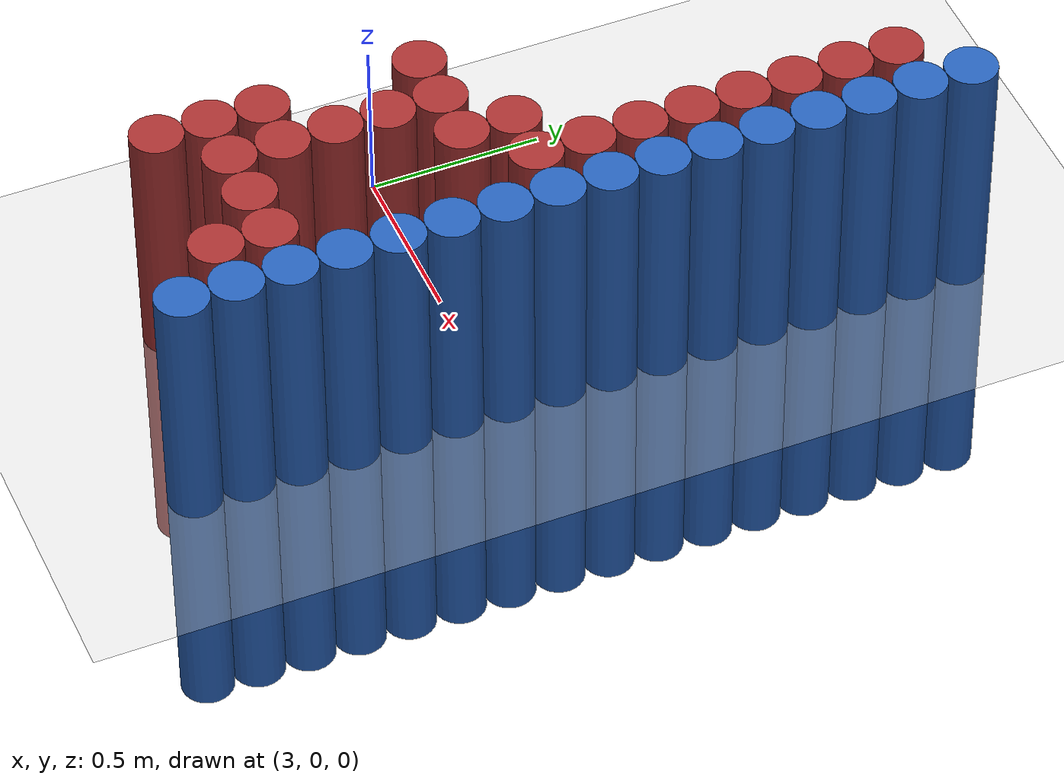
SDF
<sdf version="1.6">
 <world name="default">
  <model name="ground_plane">
   <static>1</static>
   <link name="link">
    <collision name="collision">
     <geometry><plane><normal>0 0 1</normal><size>100 100</size></plane></geometry>
     <surface><friction><ode><mu>100</mu><mu2>50</mu2></ode></friction></surface>
    </collision>
    <visual name="visual">
     <cast_shadows>0</cast_shadows>
     <geometry><plane><normal>0 0 1</normal><size>100 100</size></plane></geometry>
     <material>
      <script><uri>file://media/materials/scripts/gazebo.material</uri><name>Gazebo/Grey</name></script>
     </material>
    </visual>
   </link>
  </model>
  <model name="unit_cylinder_102">
   <static>1</static>
   <pose>3.925000 -0.875000 0.000000 0.000000 0.000000 0.000000</pose>
   <link name="link">
    <inertial>
     <mass>1</mass>
     <inertia><ixx>0.145833</ixx><ixy>0</ixy><ixz>0</ixz><iyy>0.145833</iyy><iyz>0</iyz><izz>0.125</izz></inertia>
    </inertial>
    <collision name="collision">
     <geometry><cylinder><radius>0.075000</radius><length>1.5</length></cylinder></geometry>
    </collision>
    <visual name="visual">
     <geometry><cylinder><radius>0.075000</radius><length>1.5</length></cylinder></geometry>
     <material>
      <ambient>0.152000 0.379000 0.720000 1</ambient>
      <diffuse>0.152000 0.379000 0.720000 1</diffuse>
     </material>
     <material>
      <script><name>Gazebo/Grey</name><uri>file://media/materials/scripts/gazebo.material</uri></script>
     </material>
    </visual>
   </link>
  </model>
  <model name="unit_cylinder_104">
   <static>1</static>
   <pose>3.925000 -0.725000 0.000000 0.000000 0.000000 0.000000</pose>
   <link name="link">
    <inertial>
     <mass>1</mass>
     <inertia><ixx>0.145833</ixx><ixy>0</ixy><ixz>0</ixz><iyy>0.145833</iyy><iyz>0</iyz><izz>0.125</izz></inertia>
    </inertial>
    <collision name="collision">
     <geometry><cylinder><radius>0.075000</radius><length>1.5</length></cylinder></geometry>
    </collision>
    <visual name="visual">
     <geometry><cylinder><radius>0.075000</radius><length>1.5</length></cylinder></geometry>
     <material>
      <ambient>0.152000 0.379000 0.720000 1</ambient>
      <diffuse>0.152000 0.379000 0.720000 1</diffuse>
     </material>
     <material>
      <script><name>Gazebo/Grey</name><uri>file://media/materials/scripts/gazebo.material</uri></script>
     </material>
    </visual>
   </link>
  </model>
  <model name="unit_cylinder_106">
   <static>1</static>
   <pose>3.925000 -0.575000 0.000000 0.000000 0.000000 0.000000</pose>
   <link name="link">
    <inertial>
     <mass>1</mass>
     <inertia><ixx>0.145833</ixx><ixy>0</ixy><ixz>0</ixz><iyy>0.145833</iyy><iyz>0</iyz><izz>0.125</izz></inertia>
    </inertial>
    <collision name="collision">
     <geometry><cylinder><radius>0.075000</radius><length>1.5</length></cylinder></geometry>
    </collision>
    <visual name="visual">
     <geometry><cylinder><radius>0.075000</radius><length>1.5</length></cylinder></geometry>
     <material>
      <ambient>0.152000 0.379000 0.720000 1</ambient>
      <diffuse>0.152000 0.379000 0.720000 1</diffuse>
     </material>
     <material>
      <script><name>Gazebo/Grey</name><uri>file://media/materials/scripts/gazebo.material</uri></script>
     </material>
    </visual>
   </link>
  </model>
  <model name="unit_cylinder_108">
   <static>1</static>
   <pose>3.925000 -0.425000 0.000000 0.000000 0.000000 0.000000</pose>
   <link name="link">
    <inertial>
     <mass>1</mass>
     <inertia><ixx>0.145833</ixx><ixy>0</ixy><ixz>0</ixz><iyy>0.145833</iyy><iyz>0</iyz><izz>0.125</izz></inertia>
    </inertial>
    <collision name="collision">
     <geometry><cylinder><radius>0.075000</radius><length>1.5</length></cylinder></geometry>
    </collision>
    <visual name="visual">
     <geometry><cylinder><radius>0.075000</radius><length>1.5</length></cylinder></geometry>
     <material>
      <ambient>0.152000 0.379000 0.720000 1</ambient>
      <diffuse>0.152000 0.379000 0.720000 1</diffuse>
     </material>
     <material>
      <script><name>Gazebo/Grey</name><uri>file://media/materials/scripts/gazebo.material</uri></script>
     </material>
    </visual>
   </link>
  </model>
  <model name="unit_cylinder_110">
   <static>1</static>
   <pose>3.925000 -0.275000 0.000000 0.000000 0.000000 0.000000</pose>
   <link name="link">
    <inertial>
     <mass>1</mass>
     <inertia><ixx>0.145833</ixx><ixy>0</ixy><ixz>0</ixz><iyy>0.145833</iyy><iyz>0</iyz><izz>0.125</izz></inertia>
    </inertial>
    <collision name="collision">
     <geometry><cylinder><radius>0.075000</radius><length>1.5</length></cylinder></geometry>
    </collision>
    <visual name="visual">
     <geometry><cylinder><radius>0.075000</radius><length>1.5</length></cylinder></geometry>
     <material>
      <ambient>0.152000 0.379000 0.720000 1</ambient>
      <diffuse>0.152000 0.379000 0.720000 1</diffuse>
     </material>
     <material>
      <script><name>Gazebo/Grey</name><uri>file://media/materials/scripts/gazebo.material</uri></script>
     </material>
    </visual>
   </link>
  </model>
  <model name="unit_cylinder_112">
   <static>1</static>
   <pose>3.925000 -0.125000 0.000000 0.000000 0.000000 0.000000</pose>
   <link name="link">
    <inertial>
     <mass>1</mass>
     <inertia><ixx>0.145833</ixx><ixy>0</ixy><ixz>0</ixz><iyy>0.145833</iyy><iyz>0</iyz><izz>0.125</izz></inertia>
    </inertial>
    <collision name="collision">
     <geometry><cylinder><radius>0.075000</radius><length>1.5</length></cylinder></geometry>
    </collision>
    <visual name="visual">
     <geometry><cylinder><radius>0.075000</radius><length>1.5</length></cylinder></geometry>
     <material>
      <ambient>0.152000 0.379000 0.720000 1</ambient>
      <diffuse>0.152000 0.379000 0.720000 1</diffuse>
     </material>
     <material>
      <script><name>Gazebo/Grey</name><uri>file://media/materials/scripts/gazebo.material</uri></script>
     </material>
    </visual>
   </link>
  </model>
  <model name="unit_cylinder_114">
   <static>1</static>
   <pose>3.925000 0.025000 0.000000 0.000000 0.000000 0.000000</pose>
   <link name="link">
    <inertial>
     <mass>1</mass>
     <inertia><ixx>0.145833</ixx><ixy>0</ixy><ixz>0</ixz><iyy>0.145833</iyy><iyz>0</iyz><izz>0.125</izz></inertia>
    </inertial>
    <collision name="collision">
     <geometry><cylinder><radius>0.075000</radius><length>1.5</length></cylinder></geometry>
    </collision>
    <visual name="visual">
     <geometry><cylinder><radius>0.075000</radius><length>1.5</length></cylinder></geometry>
     <material>
      <ambient>0.152000 0.379000 0.720000 1</ambient>
      <diffuse>0.152000 0.379000 0.720000 1</diffuse>
     </material>
     <material>
      <script><name>Gazebo/Grey</name><uri>file://media/materials/scripts/gazebo.material</uri></script>
     </material>
    </visual>
   </link>
  </model>
  <model name="unit_cylinder_116">
   <static>1</static>
   <pose>3.925000 0.175000 0.000000 0.000000 0.000000 0.000000</pose>
   <link name="link">
    <inertial>
     <mass>1</mass>
     <inertia><ixx>0.145833</ixx><ixy>0</ixy><ixz>0</ixz><iyy>0.145833</iyy><iyz>0</iyz><izz>0.125</izz></inertia>
    </inertial>
    <collision name="collision">
     <geometry><cylinder><radius>0.075000</radius><length>1.5</length></cylinder></geometry>
    </collision>
    <visual name="visual">
     <geometry><cylinder><radius>0.075000</radius><length>1.5</length></cylinder></geometry>
     <material>
      <ambient>0.152000 0.379000 0.720000 1</ambient>
      <diffuse>0.152000 0.379000 0.720000 1</diffuse>
     </material>
     <material>
      <script><name>Gazebo/Grey</name><uri>file://media/materials/scripts/gazebo.material</uri></script>
     </material>
    </visual>
   </link>
  </model>
  <model name="unit_cylinder_118">
   <static>1</static>
   <pose>3.925000 0.325000 0.000000 0.000000 0.000000 0.000000</pose>
   <link name="link">
    <inertial>
     <mass>1</mass>
     <inertia><ixx>0.145833</ixx><ixy>0</ixy><ixz>0</ixz><iyy>0.145833</iyy><iyz>0</iyz><izz>0.125</izz></inertia>
    </inertial>
    <collision name="collision">
     <geometry><cylinder><radius>0.075000</radius><length>1.5</length></cylinder></geometry>
    </collision>
    <visual name="visual">
     <geometry><cylinder><radius>0.075000</radius><length>1.5</length></cylinder></geometry>
     <material>
      <ambient>0.152000 0.379000 0.720000 1</ambient>
      <diffuse>0.152000 0.379000 0.720000 1</diffuse>
     </material>
     <material>
      <script><name>Gazebo/Grey</name><uri>file://media/materials/scripts/gazebo.material</uri></script>
     </material>
    </visual>
   </link>
  </model>
  <model name="unit_cylinder_120">
   <static>1</static>
   <pose>3.925000 0.475000 0.000000 0.000000 0.000000 0.000000</pose>
   <link name="link">
    <inertial>
     <mass>1</mass>
     <inertia><ixx>0.145833</ixx><ixy>0</ixy><ixz>0</ixz><iyy>0.145833</iyy><iyz>0</iyz><izz>0.125</izz></inertia>
    </inertial>
    <collision name="collision">
     <geometry><cylinder><radius>0.075000</radius><length>1.5</length></cylinder></geometry>
    </collision>
    <visual name="visual">
     <geometry><cylinder><radius>0.075000</radius><length>1.5</length></cylinder></geometry>
     <material>
      <ambient>0.152000 0.379000 0.720000 1</ambient>
      <diffuse>0.152000 0.379000 0.720000 1</diffuse>
     </material>
     <material>
      <script><name>Gazebo/Grey</name><uri>file://media/materials/scripts/gazebo.material</uri></script>
     </material>
    </visual>
   </link>
  </model>
  <model name="unit_cylinder_122">
   <static>1</static>
   <pose>3.925000 0.625000 0.000000 0.000000 0.000000 0.000000</pose>
   <link name="link">
    <inertial>
     <mass>1</mass>
     <inertia><ixx>0.145833</ixx><ixy>0</ixy><ixz>0</ixz><iyy>0.145833</iyy><iyz>0</iyz><izz>0.125</izz></inertia>
    </inertial>
    <collision name="collision">
     <geometry><cylinder><radius>0.075000</radius><length>1.5</length></cylinder></geometry>
    </collision>
    <visual name="visual">
     <geometry><cylinder><radius>0.075000</radius><length>1.5</length></cylinder></geometry>
     <material>
      <ambient>0.152000 0.379000 0.720000 1</ambient>
      <diffuse>0.152000 0.379000 0.720000 1</diffuse>
     </material>
     <material>
      <script><name>Gazebo/Grey</name><uri>file://media/materials/scripts/gazebo.material</uri></script>
     </material>
    </visual>
   </link>
  </model>
  <model name="unit_cylinder_124">
   <static>1</static>
   <pose>3.925000 0.775000 0.000000 0.000000 0.000000 0.000000</pose>
   <link name="link">
    <inertial>
     <mass>1</mass>
     <inertia><ixx>0.145833</ixx><ixy>0</ixy><ixz>0</ixz><iyy>0.145833</iyy><iyz>0</iyz><izz>0.125</izz></inertia>
    </inertial>
    <collision name="collision">
     <geometry><cylinder><radius>0.075000</radius><length>1.5</length></cylinder></geometry>
    </collision>
    <visual name="visual">
     <geometry><cylinder><radius>0.075000</radius><length>1.5</length></cylinder></geometry>
     <material>
      <ambient>0.152000 0.379000 0.720000 1</ambient>
      <diffuse>0.152000 0.379000 0.720000 1</diffuse>
     </material>
     <material>
      <script><name>Gazebo/Grey</name><uri>file://media/materials/scripts/gazebo.material</uri></script>
     </material>
    </visual>
   </link>
  </model>
  <model name="unit_cylinder_126">
   <static>1</static>
   <pose>3.925000 0.925000 0.000000 0.000000 0.000000 0.000000</pose>
   <link name="link">
    <inertial>
     <mass>1</mass>
     <inertia><ixx>0.145833</ixx><ixy>0</ixy><ixz>0</ixz><iyy>0.145833</iyy><iyz>0</iyz><izz>0.125</izz></inertia>
    </inertial>
    <collision name="collision">
     <geometry><cylinder><radius>0.075000</radius><length>1.5</length></cylinder></geometry>
    </collision>
    <visual name="visual">
     <geometry><cylinder><radius>0.075000</radius><length>1.5</length></cylinder></geometry>
     <material>
      <ambient>0.152000 0.379000 0.720000 1</ambient>
      <diffuse>0.152000 0.379000 0.720000 1</diffuse>
     </material>
     <material>
      <script><name>Gazebo/Grey</name><uri>file://media/materials/scripts/gazebo.material</uri></script>
     </material>
    </visual>
   </link>
  </model>
  <model name="unit_cylinder_128">
   <static>1</static>
   <pose>3.925000 1.075000 0.000000 0.000000 0.000000 0.000000</pose>
   <link name="link">
    <inertial>
     <mass>1</mass>
     <inertia><ixx>0.145833</ixx><ixy>0</ixy><ixz>0</ixz><iyy>0.145833</iyy><iyz>0</iyz><izz>0.125</izz></inertia>
    </inertial>
    <collision name="collision">
     <geometry><cylinder><radius>0.075000</radius><length>1.5</length></cylinder></geometry>
    </collision>
    <visual name="visual">
     <geometry><cylinder><radius>0.075000</radius><length>1.5</length></cylinder></geometry>
     <material>
      <ambient>0.152000 0.379000 0.720000 1</ambient>
      <diffuse>0.152000 0.379000 0.720000 1</diffuse>
     </material>
     <material>
      <script><name>Gazebo/Grey</name><uri>file://media/materials/scripts/gazebo.material</uri></script>
     </material>
    </visual>
   </link>
  </model>
  <model name="unit_cylinder_130">
   <static>1</static>
   <pose>3.925000 1.225000 0.000000 0.000000 0.000000 0.000000</pose>
   <link name="link">
    <inertial>
     <mass>1</mass>
     <inertia><ixx>0.145833</ixx><ixy>0</ixy><ixz>0</ixz><iyy>0.145833</iyy><iyz>0</iyz><izz>0.125</izz></inertia>
    </inertial>
    <collision name="collision">
     <geometry><cylinder><radius>0.075000</radius><length>1.5</length></cylinder></geometry>
    </collision>
    <visual name="visual">
     <geometry><cylinder><radius>0.075000</radius><length>1.5</length></cylinder></geometry>
     <material>
      <ambient>0.152000 0.379000 0.720000 1</ambient>
      <diffuse>0.152000 0.379000 0.720000 1</diffuse>
     </material>
     <material>
      <script><name>Gazebo/Grey</name><uri>file://media/materials/scripts/gazebo.material</uri></script>
     </material>
    </visual>
   </link>
  </model>
  <model name="unit_cylinder_132">
   <static>1</static>
   <pose>3.925000 1.375000 0.000000 0.000000 0.000000 0.000000</pose>
   <link name="link">
    <inertial>
     <mass>1</mass>
     <inertia><ixx>0.145833</ixx><ixy>0</ixy><ixz>0</ixz><iyy>0.145833</iyy><iyz>0</iyz><izz>0.125</izz></inertia>
    </inertial>
    <collision name="collision">
     <geometry><cylinder><radius>0.075000</radius><length>1.5</length></cylinder></geometry>
    </collision>
    <visual name="visual">
     <geometry><cylinder><radius>0.075000</radius><length>1.5</length></cylinder></geometry>
     <material>
      <ambient>0.152000 0.379000 0.720000 1</ambient>
      <diffuse>0.152000 0.379000 0.720000 1</diffuse>
     </material>
     <material>
      <script><name>Gazebo/Grey</name><uri>file://media/materials/scripts/gazebo.material</uri></script>
     </material>
    </visual>
   </link>
  </model>
  <model name="unit_cylinder_620">
   <static>1</static>
   <pose>3.325000 -0.725000 0.000000 0.000000 0.000000 0.000000</pose>
   <link name="link">
    <inertial>
     <mass>1</mass>
     <inertia><ixx>0.145833</ixx><ixy>0</ixy><ixz>0</ixz><iyy>0.145833</iyy><iyz>0</iyz><izz>0.125</izz></inertia>
    </inertial>
    <collision name="collision">
     <geometry><cylinder><radius>0.075000</radius><length>1.5</length></cylinder></geometry>
    </collision>
    <visual name="visual">
     <geometry><cylinder><radius>0.075000</radius><length>1.5</length></cylinder></geometry>
     <material>
      <ambient>0.648000 0.192000 0.192000 1</ambient>
      <diffuse>0.648000 0.192000 0.192000 1</diffuse>
     </material>
     <material>
      <script><name>Gazebo/Grey</name><uri>file://media/materials/scripts/gazebo.material</uri></script>
     </material>
    </visual>
   </link>
  </model>
  <model name="unit_cylinder_621">
   <static>1</static>
   <pose>3.325000 -0.575000 0.000000 0.000000 0.000000 0.000000</pose>
   <link name="link">
    <inertial>
     <mass>1</mass>
     <inertia><ixx>0.145833</ixx><ixy>0</ixy><ixz>0</ixz><iyy>0.145833</iyy><iyz>0</iyz><izz>0.125</izz></inertia>
    </inertial>
    <collision name="collision">
     <geometry><cylinder><radius>0.075000</radius><length>1.5</length></cylinder></geometry>
    </collision>
    <visual name="visual">
     <geometry><cylinder><radius>0.075000</radius><length>1.5</length></cylinder></geometry>
     <material>
      <ambient>0.648000 0.192000 0.192000 1</ambient>
      <diffuse>0.648000 0.192000 0.192000 1</diffuse>
     </material>
     <material>
      <script><name>Gazebo/Grey</name><uri>file://media/materials/scripts/gazebo.material</uri></script>
     </material>
    </visual>
   </link>
  </model>
  <model name="unit_cylinder_622">
   <static>1</static>
   <pose>3.325000 -0.425000 0.000000 0.000000 0.000000 0.000000</pose>
   <link name="link">
    <inertial>
     <mass>1</mass>
     <inertia><ixx>0.145833</ixx><ixy>0</ixy><ixz>0</ixz><iyy>0.145833</iyy><iyz>0</iyz><izz>0.125</izz></inertia>
    </inertial>
    <collision name="collision">
     <geometry><cylinder><radius>0.075000</radius><length>1.5</length></cylinder></geometry>
    </collision>
    <visual name="visual">
     <geometry><cylinder><radius>0.075000</radius><length>1.5</length></cylinder></geometry>
     <material>
      <ambient>0.648000 0.192000 0.192000 1</ambient>
      <diffuse>0.648000 0.192000 0.192000 1</diffuse>
     </material>
     <material>
      <script><name>Gazebo/Grey</name><uri>file://media/materials/scripts/gazebo.material</uri></script>
     </material>
    </visual>
   </link>
  </model>
  <model name="unit_cylinder_623">
   <static>1</static>
   <pose>3.325000 0.025000 0.000000 0.000000 0.000000 0.000000</pose>
   <link name="link">
    <inertial>
     <mass>1</mass>
     <inertia><ixx>0.145833</ixx><ixy>0</ixy><ixz>0</ixz><iyy>0.145833</iyy><iyz>0</iyz><izz>0.125</izz></inertia>
    </inertial>
    <collision name="collision">
     <geometry><cylinder><radius>0.075000</radius><length>1.5</length></cylinder></geometry>
    </collision>
    <visual name="visual">
     <geometry><cylinder><radius>0.075000</radius><length>1.5</length></cylinder></geometry>
     <material>
      <ambient>0.648000 0.192000 0.192000 1</ambient>
      <diffuse>0.648000 0.192000 0.192000 1</diffuse>
     </material>
     <material>
      <script><name>Gazebo/Grey</name><uri>file://media/materials/scripts/gazebo.material</uri></script>
     </material>
    </visual>
   </link>
  </model>
  <model name="unit_cylinder_631">
   <static>1</static>
   <pose>3.475000 -0.575000 0.000000 0.000000 0.000000 0.000000</pose>
   <link name="link">
    <inertial>
     <mass>1</mass>
     <inertia><ixx>0.145833</ixx><ixy>0</ixy><ixz>0</ixz><iyy>0.145833</iyy><iyz>0</iyz><izz>0.125</izz></inertia>
    </inertial>
    <collision name="collision">
     <geometry><cylinder><radius>0.075000</radius><length>1.5</length></cylinder></geometry>
    </collision>
    <visual name="visual">
     <geometry><cylinder><radius>0.075000</radius><length>1.5</length></cylinder></geometry>
     <material>
      <ambient>0.648000 0.192000 0.192000 1</ambient>
      <diffuse>0.648000 0.192000 0.192000 1</diffuse>
     </material>
     <material>
      <script><name>Gazebo/Grey</name><uri>file://media/materials/scripts/gazebo.material</uri></script>
     </material>
    </visual>
   </link>
  </model>
  <model name="unit_cylinder_632">
   <static>1</static>
   <pose>3.475000 -0.425000 0.000000 0.000000 0.000000 0.000000</pose>
   <link name="link">
    <inertial>
     <mass>1</mass>
     <inertia><ixx>0.145833</ixx><ixy>0</ixy><ixz>0</ixz><iyy>0.145833</iyy><iyz>0</iyz><izz>0.125</izz></inertia>
    </inertial>
    <collision name="collision">
     <geometry><cylinder><radius>0.075000</radius><length>1.5</length></cylinder></geometry>
    </collision>
    <visual name="visual">
     <geometry><cylinder><radius>0.075000</radius><length>1.5</length></cylinder></geometry>
     <material>
      <ambient>0.648000 0.192000 0.192000 1</ambient>
      <diffuse>0.648000 0.192000 0.192000 1</diffuse>
     </material>
     <material>
      <script><name>Gazebo/Grey</name><uri>file://media/materials/scripts/gazebo.material</uri></script>
     </material>
    </visual>
   </link>
  </model>
  <model name="unit_cylinder_633">
   <static>1</static>
   <pose>3.475000 -0.275000 0.000000 0.000000 0.000000 0.000000</pose>
   <link name="link">
    <inertial>
     <mass>1</mass>
     <inertia><ixx>0.145833</ixx><ixy>0</ixy><ixz>0</ixz><iyy>0.145833</iyy><iyz>0</iyz><izz>0.125</izz></inertia>
    </inertial>
    <collision name="collision">
     <geometry><cylinder><radius>0.075000</radius><length>1.5</length></cylinder></geometry>
    </collision>
    <visual name="visual">
     <geometry><cylinder><radius>0.075000</radius><length>1.5</length></cylinder></geometry>
     <material>
      <ambient>0.648000 0.192000 0.192000 1</ambient>
      <diffuse>0.648000 0.192000 0.192000 1</diffuse>
     </material>
     <material>
      <script><name>Gazebo/Grey</name><uri>file://media/materials/scripts/gazebo.material</uri></script>
     </material>
    </visual>
   </link>
  </model>
  <model name="unit_cylinder_634">
   <static>1</static>
   <pose>3.475000 -0.125000 0.000000 0.000000 0.000000 0.000000</pose>
   <link name="link">
    <inertial>
     <mass>1</mass>
     <inertia><ixx>0.145833</ixx><ixy>0</ixy><ixz>0</ixz><iyy>0.145833</iyy><iyz>0</iyz><izz>0.125</izz></inertia>
    </inertial>
    <collision name="collision">
     <geometry><cylinder><radius>0.075000</radius><length>1.5</length></cylinder></geometry>
    </collision>
    <visual name="visual">
     <geometry><cylinder><radius>0.075000</radius><length>1.5</length></cylinder></geometry>
     <material>
      <ambient>0.648000 0.192000 0.192000 1</ambient>
      <diffuse>0.648000 0.192000 0.192000 1</diffuse>
     </material>
     <material>
      <script><name>Gazebo/Grey</name><uri>file://media/materials/scripts/gazebo.material</uri></script>
     </material>
    </visual>
   </link>
  </model>
  <model name="unit_cylinder_635">
   <static>1</static>
   <pose>3.475000 0.025000 0.000000 0.000000 0.000000 0.000000</pose>
   <link name="link">
    <inertial>
     <mass>1</mass>
     <inertia><ixx>0.145833</ixx><ixy>0</ixy><ixz>0</ixz><iyy>0.145833</iyy><iyz>0</iyz><izz>0.125</izz></inertia>
    </inertial>
    <collision name="collision">
     <geometry><cylinder><radius>0.075000</radius><length>1.5</length></cylinder></geometry>
    </collision>
    <visual name="visual">
     <geometry><cylinder><radius>0.075000</radius><length>1.5</length></cylinder></geometry>
     <material>
      <ambient>0.648000 0.192000 0.192000 1</ambient>
      <diffuse>0.648000 0.192000 0.192000 1</diffuse>
     </material>
     <material>
      <script><name>Gazebo/Grey</name><uri>file://media/materials/scripts/gazebo.material</uri></script>
     </material>
    </visual>
   </link>
  </model>
  <model name="unit_cylinder_639">
   <static>1</static>
   <pose>3.625000 -0.575000 0.000000 0.000000 0.000000 0.000000</pose>
   <link name="link">
    <inertial>
     <mass>1</mass>
     <inertia><ixx>0.145833</ixx><ixy>0</ixy><ixz>0</ixz><iyy>0.145833</iyy><iyz>0</iyz><izz>0.125</izz></inertia>
    </inertial>
    <collision name="collision">
     <geometry><cylinder><radius>0.075000</radius><length>1.5</length></cylinder></geometry>
    </collision>
    <visual name="visual">
     <geometry><cylinder><radius>0.075000</radius><length>1.5</length></cylinder></geometry>
     <material>
      <ambient>0.648000 0.192000 0.192000 1</ambient>
      <diffuse>0.648000 0.192000 0.192000 1</diffuse>
     </material>
     <material>
      <script><name>Gazebo/Grey</name><uri>file://media/materials/scripts/gazebo.material</uri></script>
     </material>
    </visual>
   </link>
  </model>
  <model name="unit_cylinder_640">
   <static>1</static>
   <pose>3.625000 0.025000 0.000000 0.000000 0.000000 0.000000</pose>
   <link name="link">
    <inertial>
     <mass>1</mass>
     <inertia><ixx>0.145833</ixx><ixy>0</ixy><ixz>0</ixz><iyy>0.145833</iyy><iyz>0</iyz><izz>0.125</izz></inertia>
    </inertial>
    <collision name="collision">
     <geometry><cylinder><radius>0.075000</radius><length>1.5</length></cylinder></geometry>
    </collision>
    <visual name="visual">
     <geometry><cylinder><radius>0.075000</radius><length>1.5</length></cylinder></geometry>
     <material>
      <ambient>0.648000 0.192000 0.192000 1</ambient>
      <diffuse>0.648000 0.192000 0.192000 1</diffuse>
     </material>
     <material>
      <script><name>Gazebo/Grey</name><uri>file://media/materials/scripts/gazebo.material</uri></script>
     </material>
    </visual>
   </link>
  </model>
  <model name="unit_cylinder_641">
   <static>1</static>
   <pose>3.625000 0.175000 0.000000 0.000000 0.000000 0.000000</pose>
   <link name="link">
    <inertial>
     <mass>1</mass>
     <inertia><ixx>0.145833</ixx><ixy>0</ixy><ixz>0</ixz><iyy>0.145833</iyy><iyz>0</iyz><izz>0.125</izz></inertia>
    </inertial>
    <collision name="collision">
     <geometry><cylinder><radius>0.075000</radius><length>1.5</length></cylinder></geometry>
    </collision>
    <visual name="visual">
     <geometry><cylinder><radius>0.075000</radius><length>1.5</length></cylinder></geometry>
     <material>
      <ambient>0.648000 0.192000 0.192000 1</ambient>
      <diffuse>0.648000 0.192000 0.192000 1</diffuse>
     </material>
     <material>
      <script><name>Gazebo/Grey</name><uri>file://media/materials/scripts/gazebo.material</uri></script>
     </material>
    </visual>
   </link>
  </model>
  <model name="unit_cylinder_655">
   <static>1</static>
   <pose>3.775000 -0.725000 0.000000 0.000000 0.000000 0.000000</pose>
   <link name="link">
    <inertial>
     <mass>1</mass>
     <inertia><ixx>0.145833</ixx><ixy>0</ixy><ixz>0</ixz><iyy>0.145833</iyy><iyz>0</iyz><izz>0.125</izz></inertia>
    </inertial>
    <collision name="collision">
     <geometry><cylinder><radius>0.075000</radius><length>1.5</length></cylinder></geometry>
    </collision>
    <visual name="visual">
     <geometry><cylinder><radius>0.075000</radius><length>1.5</length></cylinder></geometry>
     <material>
      <ambient>0.648000 0.192000 0.192000 1</ambient>
      <diffuse>0.648000 0.192000 0.192000 1</diffuse>
     </material>
     <material>
      <script><name>Gazebo/Grey</name><uri>file://media/materials/scripts/gazebo.material</uri></script>
     </material>
    </visual>
   </link>
  </model>
  <model name="unit_cylinder_656">
   <static>1</static>
   <pose>3.775000 -0.575000 0.000000 0.000000 0.000000 0.000000</pose>
   <link name="link">
    <inertial>
     <mass>1</mass>
     <inertia><ixx>0.145833</ixx><ixy>0</ixy><ixz>0</ixz><iyy>0.145833</iyy><iyz>0</iyz><izz>0.125</izz></inertia>
    </inertial>
    <collision name="collision">
     <geometry><cylinder><radius>0.075000</radius><length>1.5</length></cylinder></geometry>
    </collision>
    <visual name="visual">
     <geometry><cylinder><radius>0.075000</radius><length>1.5</length></cylinder></geometry>
     <material>
      <ambient>0.648000 0.192000 0.192000 1</ambient>
      <diffuse>0.648000 0.192000 0.192000 1</diffuse>
     </material>
     <material>
      <script><name>Gazebo/Grey</name><uri>file://media/materials/scripts/gazebo.material</uri></script>
     </material>
    </visual>
   </link>
  </model>
  <model name="unit_cylinder_657">
   <static>1</static>
   <pose>3.775000 0.175000 0.000000 0.000000 0.000000 0.000000</pose>
   <link name="link">
    <inertial>
     <mass>1</mass>
     <inertia><ixx>0.145833</ixx><ixy>0</ixy><ixz>0</ixz><iyy>0.145833</iyy><iyz>0</iyz><izz>0.125</izz></inertia>
    </inertial>
    <collision name="collision">
     <geometry><cylinder><radius>0.075000</radius><length>1.5</length></cylinder></geometry>
    </collision>
    <visual name="visual">
     <geometry><cylinder><radius>0.075000</radius><length>1.5</length></cylinder></geometry>
     <material>
      <ambient>0.648000 0.192000 0.192000 1</ambient>
      <diffuse>0.648000 0.192000 0.192000 1</diffuse>
     </material>
     <material>
      <script><name>Gazebo/Grey</name><uri>file://media/materials/scripts/gazebo.material</uri></script>
     </material>
    </visual>
   </link>
  </model>
  <model name="unit_cylinder_658">
   <static>1</static>
   <pose>3.775000 0.325000 0.000000 0.000000 0.000000 0.000000</pose>
   <link name="link">
    <inertial>
     <mass>1</mass>
     <inertia><ixx>0.145833</ixx><ixy>0</ixy><ixz>0</ixz><iyy>0.145833</iyy><iyz>0</iyz><izz>0.125</izz></inertia>
    </inertial>
    <collision name="collision">
     <geometry><cylinder><radius>0.075000</radius><length>1.5</length></cylinder></geometry>
    </collision>
    <visual name="visual">
     <geometry><cylinder><radius>0.075000</radius><length>1.5</length></cylinder></geometry>
     <material>
      <ambient>0.648000 0.192000 0.192000 1</ambient>
      <diffuse>0.648000 0.192000 0.192000 1</diffuse>
     </material>
     <material>
      <script><name>Gazebo/Grey</name><uri>file://media/materials/scripts/gazebo.material</uri></script>
     </material>
    </visual>
   </link>
  </model>
  <model name="unit_cylinder_659">
   <static>1</static>
   <pose>3.775000 0.475000 0.000000 0.000000 0.000000 0.000000</pose>
   <link name="link">
    <inertial>
     <mass>1</mass>
     <inertia><ixx>0.145833</ixx><ixy>0</ixy><ixz>0</ixz><iyy>0.145833</iyy><iyz>0</iyz><izz>0.125</izz></inertia>
    </inertial>
    <collision name="collision">
     <geometry><cylinder><radius>0.075000</radius><length>1.5</length></cylinder></geometry>
    </collision>
    <visual name="visual">
     <geometry><cylinder><radius>0.075000</radius><length>1.5</length></cylinder></geometry>
     <material>
      <ambient>0.648000 0.192000 0.192000 1</ambient>
      <diffuse>0.648000 0.192000 0.192000 1</diffuse>
     </material>
     <material>
      <script><name>Gazebo/Grey</name><uri>file://media/materials/scripts/gazebo.material</uri></script>
     </material>
    </visual>
   </link>
  </model>
  <model name="unit_cylinder_660">
   <static>1</static>
   <pose>3.775000 0.625000 0.000000 0.000000 0.000000 0.000000</pose>
   <link name="link">
    <inertial>
     <mass>1</mass>
     <inertia><ixx>0.145833</ixx><ixy>0</ixy><ixz>0</ixz><iyy>0.145833</iyy><iyz>0</iyz><izz>0.125</izz></inertia>
    </inertial>
    <collision name="collision">
     <geometry><cylinder><radius>0.075000</radius><length>1.5</length></cylinder></geometry>
    </collision>
    <visual name="visual">
     <geometry><cylinder><radius>0.075000</radius><length>1.5</length></cylinder></geometry>
     <material>
      <ambient>0.648000 0.192000 0.192000 1</ambient>
      <diffuse>0.648000 0.192000 0.192000 1</diffuse>
     </material>
     <material>
      <script><name>Gazebo/Grey</name><uri>file://media/materials/scripts/gazebo.material</uri></script>
     </material>
    </visual>
   </link>
  </model>
  <model name="unit_cylinder_661">
   <static>1</static>
   <pose>3.775000 0.775000 0.000000 0.000000 0.000000 0.000000</pose>
   <link name="link">
    <inertial>
     <mass>1</mass>
     <inertia><ixx>0.145833</ixx><ixy>0</ixy><ixz>0</ixz><iyy>0.145833</iyy><iyz>0</iyz><izz>0.125</izz></inertia>
    </inertial>
    <collision name="collision">
     <geometry><cylinder><radius>0.075000</radius><length>1.5</length></cylinder></geometry>
    </collision>
    <visual name="visual">
     <geometry><cylinder><radius>0.075000</radius><length>1.5</length></cylinder></geometry>
     <material>
      <ambient>0.648000 0.192000 0.192000 1</ambient>
      <diffuse>0.648000 0.192000 0.192000 1</diffuse>
     </material>
     <material>
      <script><name>Gazebo/Grey</name><uri>file://media/materials/scripts/gazebo.material</uri></script>
     </material>
    </visual>
   </link>
  </model>
  <model name="unit_cylinder_662">
   <static>1</static>
   <pose>3.775000 0.925000 0.000000 0.000000 0.000000 0.000000</pose>
   <link name="link">
    <inertial>
     <mass>1</mass>
     <inertia><ixx>0.145833</ixx><ixy>0</ixy><ixz>0</ixz><iyy>0.145833</iyy><iyz>0</iyz><izz>0.125</izz></inertia>
    </inertial>
    <collision name="collision">
     <geometry><cylinder><radius>0.075000</radius><length>1.5</length></cylinder></geometry>
    </collision>
    <visual name="visual">
     <geometry><cylinder><radius>0.075000</radius><length>1.5</length></cylinder></geometry>
     <material>
      <ambient>0.648000 0.192000 0.192000 1</ambient>
      <diffuse>0.648000 0.192000 0.192000 1</diffuse>
     </material>
     <material>
      <script><name>Gazebo/Grey</name><uri>file://media/materials/scripts/gazebo.material</uri></script>
     </material>
    </visual>
   </link>
  </model>
  <model name="unit_cylinder_663">
   <static>1</static>
   <pose>3.775000 1.075000 0.000000 0.000000 0.000000 0.000000</pose>
   <link name="link">
    <inertial>
     <mass>1</mass>
     <inertia><ixx>0.145833</ixx><ixy>0</ixy><ixz>0</ixz><iyy>0.145833</iyy><iyz>0</iyz><izz>0.125</izz></inertia>
    </inertial>
    <collision name="collision">
     <geometry><cylinder><radius>0.075000</radius><length>1.5</length></cylinder></geometry>
    </collision>
    <visual name="visual">
     <geometry><cylinder><radius>0.075000</radius><length>1.5</length></cylinder></geometry>
     <material>
      <ambient>0.648000 0.192000 0.192000 1</ambient>
      <diffuse>0.648000 0.192000 0.192000 1</diffuse>
     </material>
     <material>
      <script><name>Gazebo/Grey</name><uri>file://media/materials/scripts/gazebo.material</uri></script>
     </material>
    </visual>
   </link>
  </model>
  <model name="unit_cylinder_664">
   <static>1</static>
   <pose>3.775000 1.225000 0.000000 0.000000 0.000000 0.000000</pose>
   <link name="link">
    <inertial>
     <mass>1</mass>
     <inertia><ixx>0.145833</ixx><ixy>0</ixy><ixz>0</ixz><iyy>0.145833</iyy><iyz>0</iyz><izz>0.125</izz></inertia>
    </inertial>
    <collision name="collision">
     <geometry><cylinder><radius>0.075000</radius><length>1.5</length></cylinder></geometry>
    </collision>
    <visual name="visual">
     <geometry><cylinder><radius>0.075000</radius><length>1.5</length></cylinder></geometry>
     <material>
      <ambient>0.648000 0.192000 0.192000 1</ambient>
      <diffuse>0.648000 0.192000 0.192000 1</diffuse>
     </material>
     <material>
      <script><name>Gazebo/Grey</name><uri>file://media/materials/scripts/gazebo.material</uri></script>
     </material>
    </visual>
   </link>
  </model>
  <model name="unit_cylinder_691">
   <static>1</static>
   <pose>3.925000 -0.875000 0.000000 0.000000 0.000000 0.000000</pose>
   <link name="link">
    <inertial>
     <mass>1</mass>
     <inertia><ixx>0.145833</ixx><ixy>0</ixy><ixz>0</ixz><iyy>0.145833</iyy><iyz>0</iyz><izz>0.125</izz></inertia>
    </inertial>
    <collision name="collision">
     <geometry><cylinder><radius>0.075000</radius><length>1.5</length></cylinder></geometry>
    </collision>
    <visual name="visual">
     <geometry><cylinder><radius>0.075000</radius><length>1.5</length></cylinder></geometry>
     <material>
      <ambient>0.152000 0.379000 0.720000 1</ambient>
      <diffuse>0.152000 0.379000 0.720000 1</diffuse>
     </material>
     <material>
      <script><name>Gazebo/Grey</name><uri>file://media/materials/scripts/gazebo.material</uri></script>
     </material>
    </visual>
   </link>
  </model>
  <model name="unit_cylinder_692">
   <static>1</static>
   <pose>3.925000 -0.725000 0.000000 0.000000 0.000000 0.000000</pose>
   <link name="link">
    <inertial>
     <mass>1</mass>
     <inertia><ixx>0.145833</ixx><ixy>0</ixy><ixz>0</ixz><iyy>0.145833</iyy><iyz>0</iyz><izz>0.125</izz></inertia>
    </inertial>
    <collision name="collision">
     <geometry><cylinder><radius>0.075000</radius><length>1.5</length></cylinder></geometry>
    </collision>
    <visual name="visual">
     <geometry><cylinder><radius>0.075000</radius><length>1.5</length></cylinder></geometry>
     <material>
      <ambient>0.152000 0.379000 0.720000 1</ambient>
      <diffuse>0.152000 0.379000 0.720000 1</diffuse>
     </material>
     <material>
      <script><name>Gazebo/Grey</name><uri>file://media/materials/scripts/gazebo.material</uri></script>
     </material>
    </visual>
   </link>
  </model>
  <model name="unit_cylinder_693">
   <static>1</static>
   <pose>3.925000 -0.575000 0.000000 0.000000 0.000000 0.000000</pose>
   <link name="link">
    <inertial>
     <mass>1</mass>
     <inertia><ixx>0.145833</ixx><ixy>0</ixy><ixz>0</ixz><iyy>0.145833</iyy><iyz>0</iyz><izz>0.125</izz></inertia>
    </inertial>
    <collision name="collision">
     <geometry><cylinder><radius>0.075000</radius><length>1.5</length></cylinder></geometry>
    </collision>
    <visual name="visual">
     <geometry><cylinder><radius>0.075000</radius><length>1.5</length></cylinder></geometry>
     <material>
      <ambient>0.152000 0.379000 0.720000 1</ambient>
      <diffuse>0.152000 0.379000 0.720000 1</diffuse>
     </material>
     <material>
      <script><name>Gazebo/Grey</name><uri>file://media/materials/scripts/gazebo.material</uri></script>
     </material>
    </visual>
   </link>
  </model>
  <model name="unit_cylinder_694">
   <static>1</static>
   <pose>3.925000 -0.425000 0.000000 0.000000 0.000000 0.000000</pose>
   <link name="link">
    <inertial>
     <mass>1</mass>
     <inertia><ixx>0.145833</ixx><ixy>0</ixy><ixz>0</ixz><iyy>0.145833</iyy><iyz>0</iyz><izz>0.125</izz></inertia>
    </inertial>
    <collision name="collision">
     <geometry><cylinder><radius>0.075000</radius><length>1.5</length></cylinder></geometry>
    </collision>
    <visual name="visual">
     <geometry><cylinder><radius>0.075000</radius><length>1.5</length></cylinder></geometry>
     <material>
      <ambient>0.152000 0.379000 0.720000 1</ambient>
      <diffuse>0.152000 0.379000 0.720000 1</diffuse>
     </material>
     <material>
      <script><name>Gazebo/Grey</name><uri>file://media/materials/scripts/gazebo.material</uri></script>
     </material>
    </visual>
   </link>
  </model>
  <model name="unit_cylinder_695">
   <static>1</static>
   <pose>3.925000 -0.275000 0.000000 0.000000 0.000000 0.000000</pose>
   <link name="link">
    <inertial>
     <mass>1</mass>
     <inertia><ixx>0.145833</ixx><ixy>0</ixy><ixz>0</ixz><iyy>0.145833</iyy><iyz>0</iyz><izz>0.125</izz></inertia>
    </inertial>
    <collision name="collision">
     <geometry><cylinder><radius>0.075000</radius><length>1.5</length></cylinder></geometry>
    </collision>
    <visual name="visual">
     <geometry><cylinder><radius>0.075000</radius><length>1.5</length></cylinder></geometry>
     <material>
      <ambient>0.152000 0.379000 0.720000 1</ambient>
      <diffuse>0.152000 0.379000 0.720000 1</diffuse>
     </material>
     <material>
      <script><name>Gazebo/Grey</name><uri>file://media/materials/scripts/gazebo.material</uri></script>
     </material>
    </visual>
   </link>
  </model>
  <model name="unit_cylinder_696">
   <static>1</static>
   <pose>3.925000 -0.125000 0.000000 0.000000 0.000000 0.000000</pose>
   <link name="link">
    <inertial>
     <mass>1</mass>
     <inertia><ixx>0.145833</ixx><ixy>0</ixy><ixz>0</ixz><iyy>0.145833</iyy><iyz>0</iyz><izz>0.125</izz></inertia>
    </inertial>
    <collision name="collision">
     <geometry><cylinder><radius>0.075000</radius><length>1.5</length></cylinder></geometry>
    </collision>
    <visual name="visual">
     <geometry><cylinder><radius>0.075000</radius><length>1.5</length></cylinder></geometry>
     <material>
      <ambient>0.152000 0.379000 0.720000 1</ambient>
      <diffuse>0.152000 0.379000 0.720000 1</diffuse>
     </material>
     <material>
      <script><name>Gazebo/Grey</name><uri>file://media/materials/scripts/gazebo.material</uri></script>
     </material>
    </visual>
   </link>
  </model>
  <model name="unit_cylinder_697">
   <static>1</static>
   <pose>3.925000 0.025000 0.000000 0.000000 0.000000 0.000000</pose>
   <link name="link">
    <inertial>
     <mass>1</mass>
     <inertia><ixx>0.145833</ixx><ixy>0</ixy><ixz>0</ixz><iyy>0.145833</iyy><iyz>0</iyz><izz>0.125</izz></inertia>
    </inertial>
    <collision name="collision">
     <geometry><cylinder><radius>0.075000</radius><length>1.5</length></cylinder></geometry>
    </collision>
    <visual name="visual">
     <geometry><cylinder><radius>0.075000</radius><length>1.5</length></cylinder></geometry>
     <material>
      <ambient>0.152000 0.379000 0.720000 1</ambient>
      <diffuse>0.152000 0.379000 0.720000 1</diffuse>
     </material>
     <material>
      <script><name>Gazebo/Grey</name><uri>file://media/materials/scripts/gazebo.material</uri></script>
     </material>
    </visual>
   </link>
  </model>
  <model name="unit_cylinder_698">
   <static>1</static>
   <pose>3.925000 0.175000 0.000000 0.000000 0.000000 0.000000</pose>
   <link name="link">
    <inertial>
     <mass>1</mass>
     <inertia><ixx>0.145833</ixx><ixy>0</ixy><ixz>0</ixz><iyy>0.145833</iyy><iyz>0</iyz><izz>0.125</izz></inertia>
    </inertial>
    <collision name="collision">
     <geometry><cylinder><radius>0.075000</radius><length>1.5</length></cylinder></geometry>
    </collision>
    <visual name="visual">
     <geometry><cylinder><radius>0.075000</radius><length>1.5</length></cylinder></geometry>
     <material>
      <ambient>0.152000 0.379000 0.720000 1</ambient>
      <diffuse>0.152000 0.379000 0.720000 1</diffuse>
     </material>
     <material>
      <script><name>Gazebo/Grey</name><uri>file://media/materials/scripts/gazebo.material</uri></script>
     </material>
    </visual>
   </link>
  </model>
  <model name="unit_cylinder_699">
   <static>1</static>
   <pose>3.925000 0.325000 0.000000 0.000000 0.000000 0.000000</pose>
   <link name="link">
    <inertial>
     <mass>1</mass>
     <inertia><ixx>0.145833</ixx><ixy>0</ixy><ixz>0</ixz><iyy>0.145833</iyy><iyz>0</iyz><izz>0.125</izz></inertia>
    </inertial>
    <collision name="collision">
     <geometry><cylinder><radius>0.075000</radius><length>1.5</length></cylinder></geometry>
    </collision>
    <visual name="visual">
     <geometry><cylinder><radius>0.075000</radius><length>1.5</length></cylinder></geometry>
     <material>
      <ambient>0.152000 0.379000 0.720000 1</ambient>
      <diffuse>0.152000 0.379000 0.720000 1</diffuse>
     </material>
     <material>
      <script><name>Gazebo/Grey</name><uri>file://media/materials/scripts/gazebo.material</uri></script>
     </material>
    </visual>
   </link>
  </model>
  <model name="unit_cylinder_700">
   <static>1</static>
   <pose>3.925000 0.475000 0.000000 0.000000 0.000000 0.000000</pose>
   <link name="link">
    <inertial>
     <mass>1</mass>
     <inertia><ixx>0.145833</ixx><ixy>0</ixy><ixz>0</ixz><iyy>0.145833</iyy><iyz>0</iyz><izz>0.125</izz></inertia>
    </inertial>
    <collision name="collision">
     <geometry><cylinder><radius>0.075000</radius><length>1.5</length></cylinder></geometry>
    </collision>
    <visual name="visual">
     <geometry><cylinder><radius>0.075000</radius><length>1.5</length></cylinder></geometry>
     <material>
      <ambient>0.152000 0.379000 0.720000 1</ambient>
      <diffuse>0.152000 0.379000 0.720000 1</diffuse>
     </material>
     <material>
      <script><name>Gazebo/Grey</name><uri>file://media/materials/scripts/gazebo.material</uri></script>
     </material>
    </visual>
   </link>
  </model>
  <model name="unit_cylinder_701">
   <static>1</static>
   <pose>3.925000 0.625000 0.000000 0.000000 0.000000 0.000000</pose>
   <link name="link">
    <inertial>
     <mass>1</mass>
     <inertia><ixx>0.145833</ixx><ixy>0</ixy><ixz>0</ixz><iyy>0.145833</iyy><iyz>0</iyz><izz>0.125</izz></inertia>
    </inertial>
    <collision name="collision">
     <geometry><cylinder><radius>0.075000</radius><length>1.5</length></cylinder></geometry>
    </collision>
    <visual name="visual">
     <geometry><cylinder><radius>0.075000</radius><length>1.5</length></cylinder></geometry>
     <material>
      <ambient>0.152000 0.379000 0.720000 1</ambient>
      <diffuse>0.152000 0.379000 0.720000 1</diffuse>
     </material>
     <material>
      <script><name>Gazebo/Grey</name><uri>file://media/materials/scripts/gazebo.material</uri></script>
     </material>
    </visual>
   </link>
  </model>
  <model name="unit_cylinder_702">
   <static>1</static>
   <pose>3.925000 0.775000 0.000000 0.000000 0.000000 0.000000</pose>
   <link name="link">
    <inertial>
     <mass>1</mass>
     <inertia><ixx>0.145833</ixx><ixy>0</ixy><ixz>0</ixz><iyy>0.145833</iyy><iyz>0</iyz><izz>0.125</izz></inertia>
    </inertial>
    <collision name="collision">
     <geometry><cylinder><radius>0.075000</radius><length>1.5</length></cylinder></geometry>
    </collision>
    <visual name="visual">
     <geometry><cylinder><radius>0.075000</radius><length>1.5</length></cylinder></geometry>
     <material>
      <ambient>0.152000 0.379000 0.720000 1</ambient>
      <diffuse>0.152000 0.379000 0.720000 1</diffuse>
     </material>
     <material>
      <script><name>Gazebo/Grey</name><uri>file://media/materials/scripts/gazebo.material</uri></script>
     </material>
    </visual>
   </link>
  </model>
  <model name="unit_cylinder_703">
   <static>1</static>
   <pose>3.925000 0.925000 0.000000 0.000000 0.000000 0.000000</pose>
   <link name="link">
    <inertial>
     <mass>1</mass>
     <inertia><ixx>0.145833</ixx><ixy>0</ixy><ixz>0</ixz><iyy>0.145833</iyy><iyz>0</iyz><izz>0.125</izz></inertia>
    </inertial>
    <collision name="collision">
     <geometry><cylinder><radius>0.075000</radius><length>1.5</length></cylinder></geometry>
    </collision>
    <visual name="visual">
     <geometry><cylinder><radius>0.075000</radius><length>1.5</length></cylinder></geometry>
     <material>
      <ambient>0.152000 0.379000 0.720000 1</ambient>
      <diffuse>0.152000 0.379000 0.720000 1</diffuse>
     </material>
     <material>
      <script><name>Gazebo/Grey</name><uri>file://media/materials/scripts/gazebo.material</uri></script>
     </material>
    </visual>
   </link>
  </model>
  <model name="unit_cylinder_704">
   <static>1</static>
   <pose>3.925000 1.075000 0.000000 0.000000 0.000000 0.000000</pose>
   <link name="link">
    <inertial>
     <mass>1</mass>
     <inertia><ixx>0.145833</ixx><ixy>0</ixy><ixz>0</ixz><iyy>0.145833</iyy><iyz>0</iyz><izz>0.125</izz></inertia>
    </inertial>
    <collision name="collision">
     <geometry><cylinder><radius>0.075000</radius><length>1.5</length></cylinder></geometry>
    </collision>
    <visual name="visual">
     <geometry><cylinder><radius>0.075000</radius><length>1.5</length></cylinder></geometry>
     <material>
      <ambient>0.152000 0.379000 0.720000 1</ambient>
      <diffuse>0.152000 0.379000 0.720000 1</diffuse>
     </material>
     <material>
      <script><name>Gazebo/Grey</name><uri>file://media/materials/scripts/gazebo.material</uri></script>
     </material>
    </visual>
   </link>
  </model>
  <model name="unit_cylinder_705">
   <static>1</static>
   <pose>3.925000 1.225000 0.000000 0.000000 0.000000 0.000000</pose>
   <link name="link">
    <inertial>
     <mass>1</mass>
     <inertia><ixx>0.145833</ixx><ixy>0</ixy><ixz>0</ixz><iyy>0.145833</iyy><iyz>0</iyz><izz>0.125</izz></inertia>
    </inertial>
    <collision name="collision">
     <geometry><cylinder><radius>0.075000</radius><length>1.5</length></cylinder></geometry>
    </collision>
    <visual name="visual">
     <geometry><cylinder><radius>0.075000</radius><length>1.5</length></cylinder></geometry>
     <material>
      <ambient>0.152000 0.379000 0.720000 1</ambient>
      <diffuse>0.152000 0.379000 0.720000 1</diffuse>
     </material>
     <material>
      <script><name>Gazebo/Grey</name><uri>file://media/materials/scripts/gazebo.material</uri></script>
     </material>
    </visual>
   </link>
  </model>
 </world>
</sdf>
